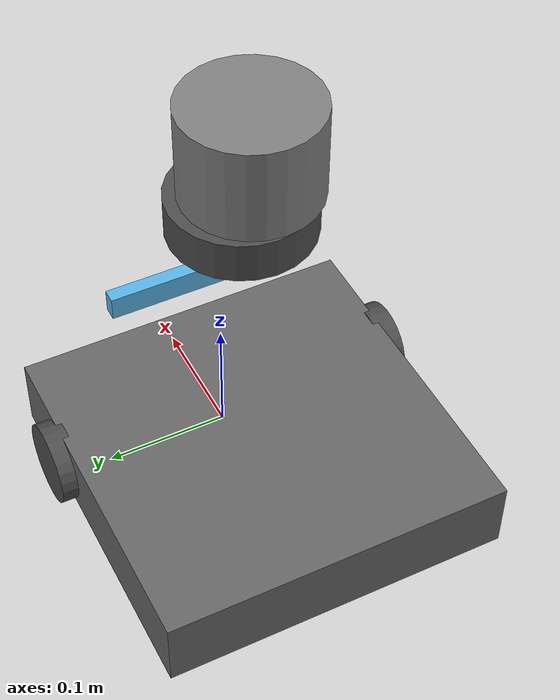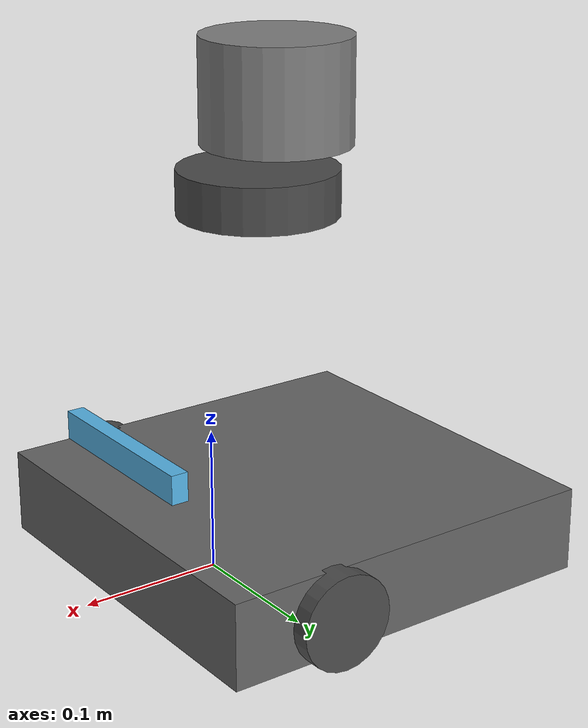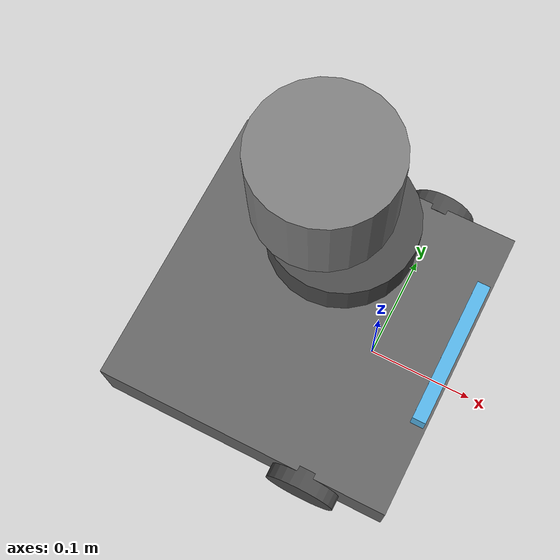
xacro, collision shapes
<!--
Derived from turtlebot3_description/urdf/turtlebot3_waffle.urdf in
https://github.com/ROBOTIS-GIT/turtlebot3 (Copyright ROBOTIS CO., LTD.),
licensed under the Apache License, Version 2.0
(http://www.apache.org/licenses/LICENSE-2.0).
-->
<?xml version="1.0" ?>
<robot name="turtlebot3_waffle" xmlns:xacro="http://ros.org/wiki/xacro">
  <xacro:arg name="namespace" default=""/>
  <xacro:property name="namespace" value="$(arg namespace)"/>

  <xacro:include filename="$(find dae-coverage-floor-flatness)/urdf/turtlebot3_waffle.gazebo.xacro"/>

  <!-- Init colour -->
  <material name="black">
      <color rgba="0.0 0.0 0.0 1.0"/>
  </material>

  <material name="dark">
    <color rgba="0.3 0.3 0.3 1.0"/>
  </material>

  <material name="light_black">
    <color rgba="0.4 0.4 0.4 1.0"/>
  </material>

  <material name="blue">
    <color rgba="0.0 0.0 0.8 1.0"/>
  </material>

  <material name="green">
    <color rgba="0.0 0.8 0.0 1.0"/>
  </material>

  <material name="grey">
    <color rgba="0.5 0.5 0.5 1.0"/>
  </material>

  <material name="orange">
    <color rgba="1.0 0.4235 0.0392 1.0"/>
  </material>

  <material name="brown">
    <color rgba="0.8706 0.8118 0.7647 1.0"/>
  </material>

  <material name="red">
    <color rgba="0.8 0.0 0.0 1.0"/>
  </material>

  <material name="white">
    <color rgba="1.0 1.0 1.0 1.0"/>
  </material>

  <link name="${namespace}base_link_root"/>

  <joint name="${namespace}base_link_root_joint" type="fixed">
    <parent link="${namespace}base_link_root"/>
    <child link="${namespace}base_link"/>
    <origin xyz="0 0 0" rpy="0 0 0"/>
  </joint>

  <link name="${namespace}base_link">
    <visual>
      <origin xyz="-0.064 0 0.0" rpy="0 0 0"/>
      <geometry>
        <mesh filename="package://turtlebot3_description/meshes/bases/waffle_base.stl" scale="0.001 0.001 0.001"/>
      </geometry>
      <material name="light_black"/>
    </visual>

    <collision>
      <origin xyz="-0.064 0 0.025" rpy="0 0 0"/>
      <geometry>
        <box size="0.28 0.28 0.06"/>
      </geometry>
    </collision>

    <inertial>
      <origin xyz="0 0 0.025" rpy="0 0 0"/>
      <mass value="2.2729096"/>
      <inertia ixx="1.4404e-02" ixy="-7.8763e-05" ixz="1.8476e-04"
               iyy="1.4270e-02" iyz="-5.8643e-06"
               izz="2.4192e-02" />
    </inertial>
  </link>

  <joint name="${namespace}wheel_left_joint" type="continuous">
    <parent link="${namespace}base_link"/>
    <child link="${namespace}wheel_left_link"/>
    <origin xyz="0.0 0.144 0.023" rpy="-1.57 0 0"/>
    <axis xyz="0 0 1"/>
  </joint>

  <link name="${namespace}wheel_left_link">
    <visual>
      <origin xyz="0 0 0" rpy="1.57 0 0"/>
      <geometry>
        <mesh filename="package://turtlebot3_description/meshes/wheels/left_tire.stl" scale="0.001 0.001 0.001"/>
      </geometry>
      <material name="dark"/>
    </visual>

    <collision>
      <origin xyz="0 0 0" rpy="0 0 0"/>
      <geometry>
        <cylinder length="0.018" radius="0.033"/>
      </geometry>
    </collision>

    <inertial>
      <origin xyz="0 0 0" />
      <mass value="2.8498940e-02" />
      <inertia ixx="1.1175580e-05" ixy="-4.2369783e-11" ixz="-5.9381719e-09"
               iyy="1.1192413e-05" iyz="-1.4400107e-11"
               izz="2.0712558e-05" />
      </inertial>
  </link>

  <joint name="${namespace}wheel_right_joint" type="continuous">
    <parent link="${namespace}base_link"/>
    <child link="${namespace}wheel_right_link"/>
    <origin xyz="0.0 -0.144 0.023" rpy="-1.57 0 0"/>
    <axis xyz="0 0 1"/>
  </joint>

  <link name="${namespace}wheel_right_link">
    <visual>
      <origin xyz="0 0 0" rpy="1.57 0 0"/>
      <geometry>
        <mesh filename="package://turtlebot3_description/meshes/wheels/right_tire.stl" scale="0.001 0.001 0.001"/>
      </geometry>
      <material name="dark"/>
    </visual>

    <collision>
      <origin xyz="0 0 0" rpy="0 0 0"/>
      <geometry>
        <cylinder length="0.018" radius="0.033"/>
      </geometry>
    </collision>

    <inertial>
      <origin xyz="0 0 0" />
      <mass value="2.8498940e-02" />
      <inertia ixx="1.1175580e-05" ixy="-4.2369783e-11" ixz="-5.9381719e-09"
               iyy="1.1192413e-05" iyz="-1.4400107e-11"
               izz="2.0712558e-05" />
      </inertial>
  </link>

  <joint name="${namespace}caster_back_right_joint" type="fixed">
    <parent link="${namespace}base_link"/>
    <child link="${namespace}caster_back_right_link"/>
    <origin xyz="-0.177 -0.064 -0.004" rpy="-1.57 0 0"/>
  </joint>

  <link name="${namespace}caster_back_right_link">
    <collision>
      <origin xyz="0 0.001 0" rpy="0 0 0"/>
      <geometry>
        <box size="0.030 0.009 0.020"/>
      </geometry>
    </collision>

    <inertial>
      <origin xyz="0 0 0" />
      <mass value="0.005" />
      <inertia ixx="0.001" ixy="0.0" ixz="0.0"
               iyy="0.001" iyz="0.0"
               izz="0.001" />
    </inertial>
  </link>

  <joint name="${namespace}caster_back_left_joint" type="fixed">
    <parent link="${namespace}base_link"/>
    <child link="${namespace}caster_back_left_link"/>
    <origin xyz="-0.177 0.064 -0.004" rpy="-1.57 0 0"/>
  </joint>

  <link name="${namespace}caster_back_left_link">
    <collision>
      <origin xyz="0 0.001 0" rpy="0 0 0"/>
      <geometry>
        <box size="0.030 0.009 0.020"/>
      </geometry>
    </collision>

    <inertial>
      <origin xyz="0 0 0" />
      <mass value="0.005" />
      <inertia ixx="0.001" ixy="0.0" ixz="0.0"
               iyy="0.001" iyz="0.0"
               izz="0.001" />
    </inertial>
  </link>

  <joint name="${namespace}imu_joint" type="fixed">
    <parent link="${namespace}base_link"/>
    <child link="${namespace}imu_link"/>
    <origin xyz="0.0 0 0.068" rpy="0 0 0"/>
  </joint>

  <link name="${namespace}imu_link"/>

  <joint name="${namespace}scan_joint" type="fixed">
    <parent link="${namespace}base_link"/>
    <child link="${namespace}base_scan"/>
    <origin xyz="-0.055 0 0.269" rpy="0 0 0"/>
  </joint>

  <link name="${namespace}base_scan">
    <visual>
      <origin xyz="0 0 0" rpy="0 0 0"/>
      <geometry>
        <mesh filename="package://turtlebot3_description/meshes/sensors/lds.stl" scale="0.001 0.001 0.001"/>
      </geometry>
      <material name="dark"/>
    </visual>

    <collision>
      <origin xyz="0.015 0 -0.0065" rpy="0 0 0"/>
      <geometry>
        <cylinder length="0.0315" radius="0.055"/>
      </geometry>
    </collision>

    <inertial>
      <mass value="0.114" />
      <origin xyz="0 0 0" />
      <inertia ixx="0.001" ixy="0.0" ixz="0.0"
               iyy="0.001" iyz="0.0"
               izz="0.001" />
    </inertial>
  </link>

  <joint name="${namespace}velodyne_joint" type="fixed">
    <parent link="${namespace}base_link"/>
    <child link="${namespace}velodyne_link"/>
    <origin xyz="-0.055 0 0.328" rpy="0 0 0"/>
  </joint>

  <link name="${namespace}velodyne_link">
    <visual>
      <origin xyz="0 0 0" rpy="0 0 0"/>
      <geometry>
        <cylinder length="0.072" radius="0.0515"/>
      </geometry>
      <material name="grey"/>
    </visual>

    <collision>
      <origin xyz="0 0 0" rpy="0 0 0"/>
      <geometry>
        <cylinder length="0.072" radius="0.0515"/>
      </geometry>
    </collision>

    <inertial>
      <origin xyz="0 0 0" />
      <mass value="0.830" />
      <inertia ixx="0.001" ixy="0.0" ixz="0.0"
               iyy="0.001" iyz="0.0"
               izz="0.001" />
    </inertial>
  </link>

  <joint name="${namespace}camera_joint" type="fixed">
    <origin xyz="0.064 -0.065 0.094" rpy="0 0 0"/>
    <parent link="${namespace}base_link"/>
    <child link="${namespace}camera_link"/>
  </joint>

  <link name="${namespace}camera_link">
    <visual>
     <origin xyz="0 0 0" rpy="1.57 0 1.57"/>
      <geometry>
       <mesh filename="package://turtlebot3_description/meshes/sensors/r200.dae" />
      </geometry>
    </visual>
    <collision>
      <origin xyz="0.003 0.065 0.007" rpy="0 0 0"/>
      <geometry>
        <box size="0.012 0.132 0.020"/>
      </geometry>
    </collision>
  </link>

  <joint name="${namespace}camera_rgb_joint" type="fixed">
    <origin xyz="0.005 0.018 0.013" rpy="0 0 0"/>
    <parent link="${namespace}camera_link"/>
    <child link="${namespace}camera_rgb_frame"/>
  </joint>
  <link name="${namespace}camera_rgb_frame"/>

  <joint name="${namespace}camera_rgb_optical_joint" type="fixed">
    <origin xyz="0 0 0" rpy="-1.57 0 -1.57"/>
    <parent link="${namespace}camera_rgb_frame"/>
    <child link="${namespace}camera_rgb_optical_frame"/>
  </joint>
  <link name="${namespace}camera_rgb_optical_frame"/>

  <joint name="${namespace}camera_depth_joint" type="fixed">
    <origin xyz="0.005 0.028 0.013" rpy="0 0 0"/>
    <parent link="${namespace}camera_link"/>
    <child link="${namespace}camera_depth_frame"/>
  </joint>
  <link name="${namespace}camera_depth_frame"/>

  <joint name="${namespace}camera_depth_optical_joint" type="fixed">
    <origin xyz="0 0 0" rpy="-1.57 0 -1.57"/>
    <parent link="${namespace}camera_depth_frame"/>
    <child link="${namespace}camera_depth_optical_frame"/>
  </joint>
  <link name="${namespace}camera_depth_optical_frame"/>

</robot>
